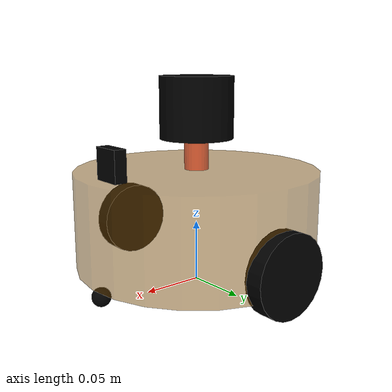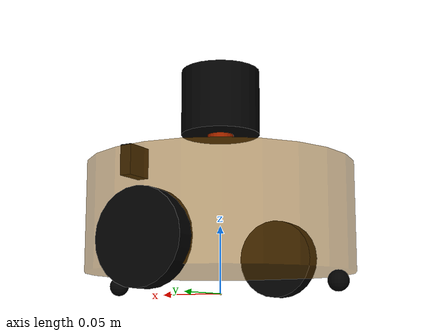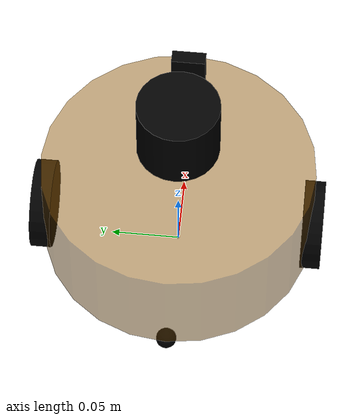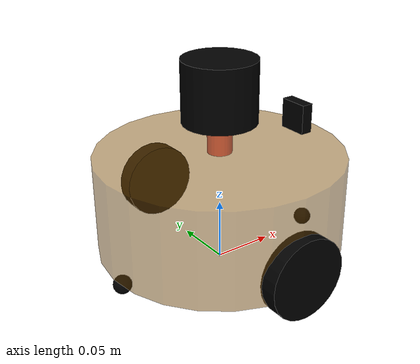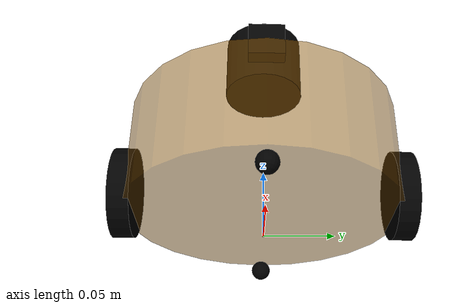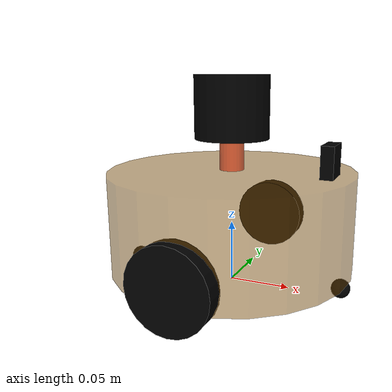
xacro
<!-- 组合底盘、摄像头和雷达 -->
<robot name="my_car_camera" xmlns:xacro="http://wiki.ros.org/xacro">
    <!-- 包含惯性矩阵计算的头文件 -->
    <xacro:include filename="head.xacro" />

    <!-- 小车组件 -->
    <xacro:include filename="car_base.xacro" />
    <xacro:include filename="car_camera.xacro" />
    <xacro:include filename="car_laser.xacro" />

    <!-- 小车运动控制 -->
    <xacro:include filename="car_move.xacro" />
</robot>

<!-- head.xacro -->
<robot name="head_file" xmlns:xacro="http://wiki.ros.org/xacro">
    <!-- Macro for inertia matrix -->
    <xacro:macro name="sphere_inertial_matrix" params="m r">
        <inertial>
            <mass value="${m}" />
            <inertia ixx="${2*m*r*r/5}" ixy="0" ixz="0"
                iyy="${2*m*r*r/5}" iyz="0"
                izz="${2*m*r*r/5}" />
        </inertial>
    </xacro:macro>

    <xacro:macro name="cylinder_inertial_matrix" params="m r h">
        <inertial>
            <mass value="${m}" />
            <inertia ixx="${m*(3*r*r+h*h)/12}" ixy = "0" ixz = "0"
                iyy="${m*(3*r*r+h*h)/12}" iyz = "0"
                izz="${m*r*r/2}" />
        </inertial>
    </xacro:macro>

    <xacro:macro name="Box_inertial_matrix" params="m l w h">
       <inertial>
               <mass value="${m}" />
               <inertia ixx="${m*(h*h + l*l)/12}" ixy = "0" ixz = "0"
                   iyy="${m*(w*w + l*l)/12}" iyz= "0"
                   izz="${m*(w*w + h*h)/12}" />
       </inertial>
   </xacro:macro>
</robot>

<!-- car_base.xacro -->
<robot name="car_base" xmlns:xacro="http://www.ros.org/wiki/xacro">
    <!-- 封装变量、常量 -->
    <xacro:property name="PI" value="3.1415926"/>
    <!-- 宏:黑色设置 -->
    <material name="black">
        <color rgba="0.0 0.0 0.0 1.0" />
    </material>
    <!-- 底盘属性 -->
    <xacro:property name="base_footprint_radius" value="0.001" /> <!-- base_footprint 半径  -->
    <xacro:property name="base_link_radius" value="0.1" />        <!-- base_link 半径 -->
    <xacro:property name="base_link_length" value="0.08" />       <!-- base_link 长 -->
    <xacro:property name="earth_space" value="0.015" />           <!-- 离地间距 -->
    <xacro:property name="base_link_m" value="0.5" />             <!-- 质量  -->

    <!-- 底盘 -->
    <link name="base_footprint">
        <visual>
            <geometry>
                <sphere radius="${base_footprint_radius}" />
            </geometry>
        </visual>
    </link>

    <link name="base_link">
        <visual>
            <geometry>
                <cylinder radius="${base_link_radius}" length="${base_link_length}" />
            </geometry>
            <origin xyz="0 0 0" rpy="0 0 0" />
            <material name="yellow">
                <color rgba="0.5 0.3 0.0 0.5" />
            </material>
        </visual>
        <collision>
            <geometry>
                <cylinder radius="${base_link_radius}" length="${base_link_length}" />
            </geometry>
            <origin xyz="0 0 0" rpy="0 0 0" />
        </collision>
        <xacro:cylinder_inertial_matrix m="${base_link_m}" r="${base_link_radius}" h="${base_link_length}" />
    </link>

    <joint name="base_link2base_footprint" type="fixed">
        <parent link="base_footprint" />
        <child link="base_link" />
        <origin xyz="0 0 ${earth_space + base_link_length / 2 }" />
    </joint>
    <gazebo reference="base_link">
        <material>Gazebo/Yellow</material>
    </gazebo>

    <!-- 驱动轮 -->
    <!-- 驱动轮属性 -->
    <xacro:property name="wheel_radius" value="0.0325" /><!-- 半径 -->
    <xacro:property name="wheel_length" value="0.015" /><!-- 宽度 -->
    <xacro:property name="wheel_m" value="0.05" /> <!-- 质量  -->

    <!-- 驱动轮宏实现 -->
    <xacro:macro name="add_wheels" params="name flag">
        <link name="${name}_wheel">
            <visual>
                <geometry>
                    <cylinder radius="${wheel_radius}" length="${wheel_length}" />
                </geometry>
                <origin xyz="0.0 0.0 0.0" rpy="${PI / 2} 0.0 0.0" />
                <material name="black" />
            </visual>
            <collision>
                <geometry>
                    <cylinder radius="${wheel_radius}" length="${wheel_length}" />
                </geometry>
                <origin xyz="0.0 0.0 0.0" rpy="${PI / 2} 0.0 0.0" />
            </collision>
            <xacro:cylinder_inertial_matrix m="${wheel_m}" r="${wheel_radius}" h="${wheel_length}" />
        </link>

      <joint name="${name}_wheel2base_link" type="continuous">
          <parent link="base_link" />
          <child link="${name}_wheel" />
          <origin xyz="0 ${flag * base_link_radius} ${-(earth_space + base_link_length / 2 - wheel_radius) }" />
          <axis xyz="0 1 0" />
      </joint>

      <gazebo reference="${name}_wheel">
          <material>Gazebo/Red</material>
      </gazebo>

    </xacro:macro>
    <xacro:add_wheels name="left" flag="1" />
    <xacro:add_wheels name="right" flag="-1" />
    <!-- 支撑轮 -->
    <!-- 支撑轮属性 -->
    <xacro:property name="support_wheel_radius" value="0.0075" /> <!-- 支撑轮半径 -->
    <xacro:property name="support_wheel_m" value="0.03" /> <!-- 质量  -->

    <!-- 支撑轮宏 -->
    <xacro:macro name="add_support_wheel" params="name flag" >
        <link name="${name}_wheel">
            <visual>
                <geometry>
                    <sphere radius="${support_wheel_radius}" />
                </geometry>
                <origin xyz="0 0 0" rpy="0 0 0" />
                <material name="black" />
            </visual>
            <collision>
                <geometry>
                    <sphere radius="${support_wheel_radius}" />
                </geometry>
                <origin xyz="0 0 0" rpy="0 0 0" />
            </collision>
            <xacro:sphere_inertial_matrix m="${support_wheel_m}" r="${support_wheel_radius}" />
        </link>

        <joint name="${name}_wheel2base_link" type="continuous">
            <parent link="base_link" />
            <child link="${name}_wheel" />
            <origin xyz="${flag * (base_link_radius - support_wheel_radius)} 0 ${-(base_link_length / 2 + earth_space / 2)}" />
            <axis xyz="1 1 1" />
        </joint>
        <gazebo reference="${name}_wheel">
            <material>Gazebo/Red</material>
        </gazebo>
    </xacro:macro>

    <xacro:add_support_wheel name="front" flag="1" />
    <xacro:add_support_wheel name="back" flag="-1" />

</robot>

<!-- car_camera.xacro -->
<robot name="car_camera" xmlns:xacro="http://wiki.ros.org/xacro">
    <!-- 摄像头属性 -->
    <xacro:property name="camera_length" value="0.01" />  <!-- 摄像头长度(x) -->
    <xacro:property name="camera_width" value="0.025" />  <!-- 摄像头宽度(y) -->
    <xacro:property name="camera_height" value="0.025" /> <!-- 摄像头高度(z) -->
    <xacro:property name="camera_x" value="0.08" />       <!-- 摄像头安装的x坐标 -->
    <xacro:property name="camera_y" value="0.0" />        <!-- 摄像头安装的y坐标 -->
    <xacro:property name="camera_z" value="${base_link_length / 2 + camera_height / 2}" /> <!-- 摄像头安装的z坐标:底盘高度 / 2 + 摄像头高度 / 2  -->

    <xacro:property name="camera_m" value="0.01" />       <!-- 摄像头质量 -->

    <!-- 摄像头关节以及link -->
    <link name="camera">
        <visual>
            <geometry>
                <box size="${camera_length} ${camera_width} ${camera_height}" />
            </geometry>
            <origin xyz="0.0 0.0 0.0" rpy="0.0 0.0 0.0" />
            <material name="black" />
        </visual>
        <collision>
            <geometry>
                <box size="${camera_length} ${camera_width} ${camera_height}" />
            </geometry>
            <origin xyz="0.0 0.0 0.0" rpy="0.0 0.0 0.0" />
        </collision>
        <xacro:Box_inertial_matrix m="${camera_m}" l="${camera_length}" w="${camera_width}" h="${camera_height}" />
    </link>

    <joint name="camera2base_link" type="fixed">
        <parent link="base_link" />
        <child link="camera" />
        <origin xyz="${camera_x} ${camera_y} ${camera_z}" />
    </joint>
    <gazebo reference="camera">
        <material>Gazebo/Blue</material>
    </gazebo>

    <!-- 单目相机插件 -->
    <gazebo reference="camera">
        <sensor type="camera" name="camera_node">
            <update_rate>30.0</update_rate> <!-- 更新频率 -->
            <!-- 摄像头基本信息设置 -->
            <camera name="head">
                <horizontal_fov>1.3962634</horizontal_fov>
                <image>
                    <width>1280</width>
                    <height>720</height>
                    <format>R8G8B8</format>
                </image>
                <clip>
                    <near>0.02</near>
                    <far>300</far>
                </clip>
                <noise>
                    <type>gaussian</type>
                    <mean>0.0</mean>
                    <stddev>0.007</stddev>
                </noise>
            </camera>
            <!-- 核心插件 -->
            <plugin name="gazebo_camera" filename="libgazebo_ros_camera.so">
                <alwaysOn>true</alwaysOn>
                <updateRate>0.0</updateRate>
                <cameraName>/camera</cameraName>
                <imageTopicName>image_raw</imageTopicName>
                <cameraInfoTopicName>camera_info</cameraInfoTopicName>
                <frameName>camera</frameName>
                <hackBaseline>0.07</hackBaseline>
                <distortionK1>0.0</distortionK1>
                <distortionK2>0.0</distortionK2>
                <distortionK3>0.0</distortionK3>
                <distortionT1>0.0</distortionT1>
                <distortionT2>0.0</distortionT2>
            </plugin>
        </sensor>
    </gazebo>
</robot>

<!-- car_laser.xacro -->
<robot name="car_laser" xmlns:xacro="http://wiki.ros.org/xacro">

    <!-- 雷达支架 -->
    <xacro:property name="support_length" value="0.025" /> <!-- 支架长度 -->
    <xacro:property name="support_radius" value="0.01" /> <!-- 支架半径 -->
    <xacro:property name="support_x" value="0.0" /> <!-- 支架安装的x坐标 -->
    <xacro:property name="support_y" value="0.0" /> <!-- 支架安装的y坐标 -->
    <xacro:property name="support_z" value="${base_link_length / 2 + support_length / 2}" /> <!-- 支架安装的z坐标:底盘高度 / 2 + 支架高度 / 2  -->

    <xacro:property name="support_m" value="0.02" /> <!-- 支架质量 -->

    <link name="support">
        <visual>
            <geometry>
                <cylinder radius="${support_radius}" length="${support_length}" />
            </geometry>
            <origin xyz="0.0 0.0 0.0" rpy="0.0 0.0 0.0" />
            <material name="red">
                <color rgba="0.8 0.2 0.0 0.8" />
            </material>
        </visual>

        <collision>
            <geometry>
                <cylinder radius="${support_radius}" length="${support_length}" />
            </geometry>
            <origin xyz="0.0 0.0 0.0" rpy="0.0 0.0 0.0" />
        </collision>

        <xacro:cylinder_inertial_matrix m="${support_m}" r="${support_radius}" h="${support_length}" />

    </link>

    <joint name="support2base_link" type="fixed">
        <parent link="base_link" />
        <child link="support" />
        <origin xyz="${support_x} ${support_y} ${support_z}" />
    </joint>

    <gazebo reference="support">
        <material>Gazebo/White</material>
    </gazebo>

    <!-- 雷达属性 -->
    <xacro:property name="laser_length" value="0.05" /> <!-- 雷达长度 -->
    <xacro:property name="laser_radius" value="0.03" /> <!-- 雷达半径 -->
    <xacro:property name="laser_x" value="0.0" /> <!-- 雷达安装的x坐标 -->
    <xacro:property name="laser_y" value="0.0" /> <!-- 雷达安装的y坐标 -->
    <xacro:property name="laser_z" value="${support_length / 2 + laser_length / 2}" /> <!-- 雷达安装的z坐标:支架高度 / 2 + 雷达高度 / 2  -->

    <xacro:property name="laser_m" value="0.1" /> <!-- 雷达质量 -->

    <!-- 雷达关节以及link -->
    <link name="laser">
        <visual>
            <geometry>
                <cylinder radius="${laser_radius}" length="${laser_length}" />
            </geometry>
            <origin xyz="0.0 0.0 0.0" rpy="0.0 0.0 0.0" />
            <material name="black" />
        </visual>
        <collision>
            <geometry>
                <cylinder radius="${laser_radius}" length="${laser_length}" />
            </geometry>
            <origin xyz="0.0 0.0 0.0" rpy="0.0 0.0 0.0" />
        </collision>
        <xacro:cylinder_inertial_matrix m="${laser_m}" r="${laser_radius}" h="${laser_length}" />
    </link>

    <joint name="laser2support" type="fixed">
        <parent link="support" />
        <child link="laser" />
        <origin xyz="${laser_x} ${laser_y} ${laser_z}" />
    </joint>
    <gazebo reference="laser">
        <material>Gazebo/Black</material>
    </gazebo>

    <!-- 雷达插件 -->
    <gazebo reference="laser">
        <sensor type="ray" name="rplidar">
            <pose>0 0 0 0 0 0</pose>
            <visualize>true</visualize>
            <update_rate>10</update_rate>
            <ray>
                <scan>
                    <horizontal>
                        <samples>360</samples>
                        <resolution>1</resolution>
                        <min_angle>-3.14159265</min_angle>
                        <max_angle>3.14159265</max_angle>
                    </horizontal>
                </scan>
                <range>
                    <min>0.1</min>
                    <max>10.0</max>
                    <resolution>0.01</resolution>
                </range>
                <noise>
                    <type>gaussian</type>
                    <mean>0.0</mean>
                    <stddev>0.01</stddev>
                </noise>
            </ray>
            <plugin name="gazebo_rplidar" filename="libgazebo_ros_laser.so">
                <topicName>/scan</topicName>
                <frameName>laser</frameName>
            </plugin>
        </sensor>
    </gazebo>

</robot>
